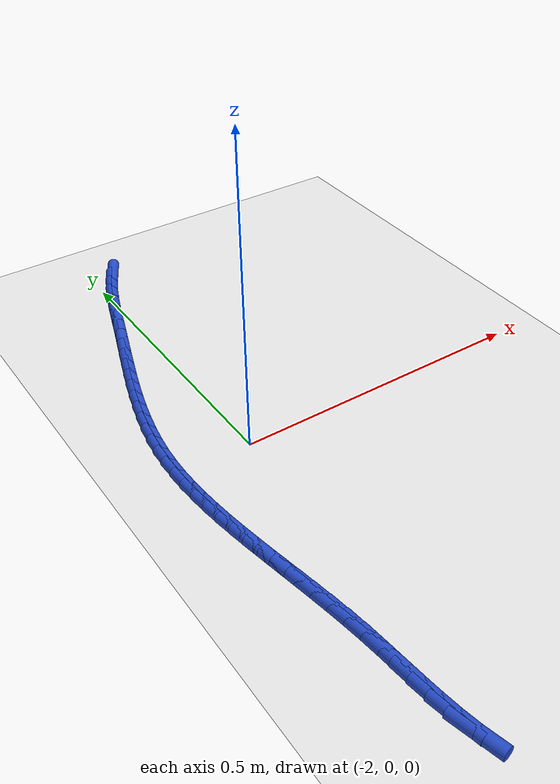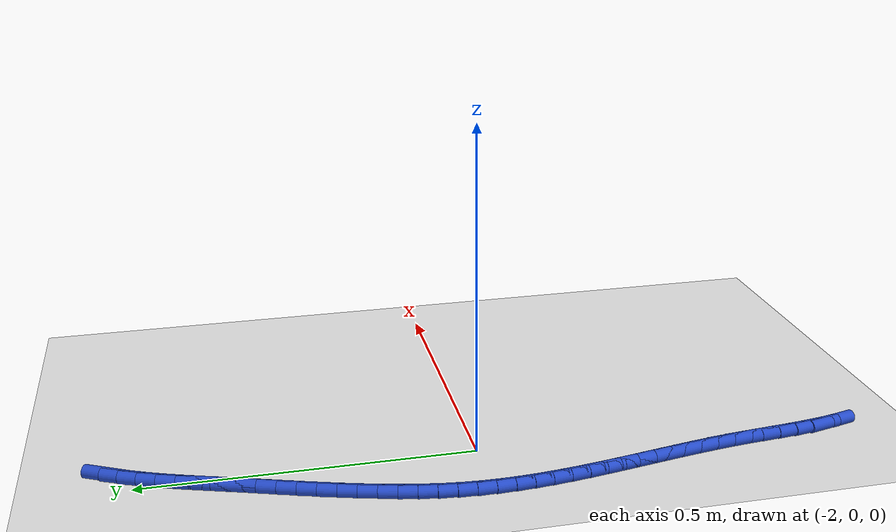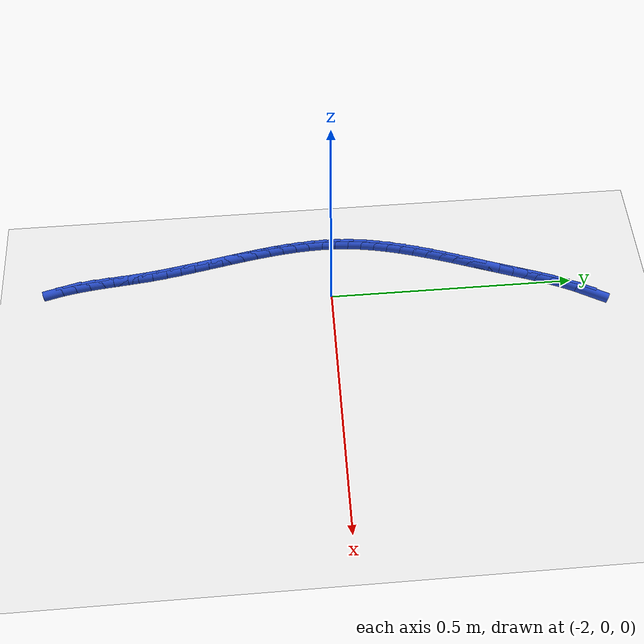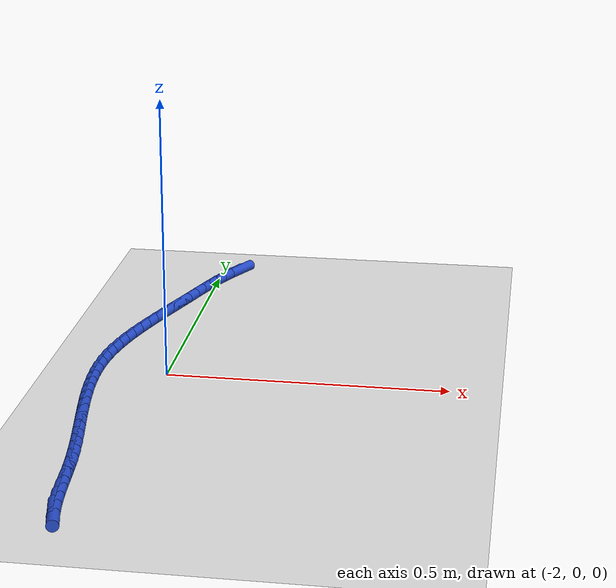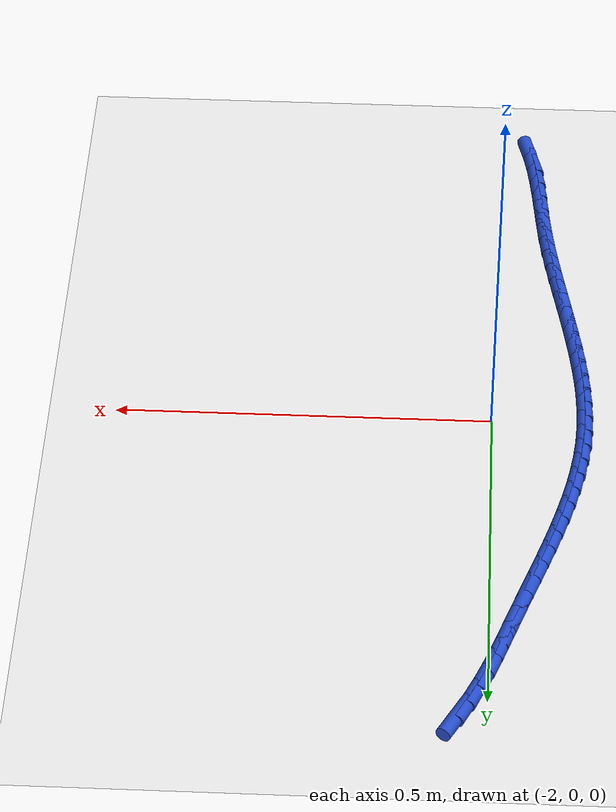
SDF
<sdf version="1.6">
 <world name="default">
  <model name="ground_plane">
   <static>1</static>
   <link name="link">
    <collision name="collision">
     <geometry><plane><normal>0 0 1</normal><size>100 100</size></plane></geometry>
     <surface><friction><ode><mu>100</mu><mu2>50</mu2></ode></friction></surface>
    </collision>
    <visual name="visual">
     <cast_shadows>0</cast_shadows>
     <geometry><plane><normal>0 0 1</normal><size>100 100</size></plane></geometry>
     <material>
      <script><uri>file://media/materials/scripts/gazebo.material</uri><name>Gazebo/WhiteGlow</name></script>
     </material>
    </visual>
   </link>
  </model>
  <model name="line">
   <link name="link_98">
    <pose>-1.9653578646720447 0.5298856837516012 0.01 0 1.57 1.0808675372747998</pose>
    <collision name="collision">
     <geometry><cylinder><radius>0.01</radius><length>0.08</length></cylinder></geometry>
    </collision>
    <visual name="visual">
     <material>
      <script><name>Gazebo/Blue</name><uri>file://media/materials/scripts/gazebo.material</uri></script>
     </material>
     <geometry><cylinder><radius>0.01</radius><length>0.08</length></cylinder></geometry>
    </visual>
   </link>
   <link name="link_99">
    <pose>-1.978480280240649 0.5052794634999281 0.01 0 1.57 1.1376673952364231</pose>
    <collision name="collision">
     <geometry><cylinder><radius>0.01</radius><length>0.08</length></cylinder></geometry>
    </collision>
    <visual name="visual">
     <material>
      <script><name>Gazebo/Blue</name><uri>file://media/materials/scripts/gazebo.material</uri></script>
     </material>
     <geometry><cylinder><radius>0.01</radius><length>0.08</length></cylinder></geometry>
    </visual>
   </link>
   <link name="link_100">
    <pose>-1.9902915178894625 0.47973687675763205 0.01 0 1.57 1.181896480658805</pose>
    <collision name="collision">
     <geometry><cylinder><radius>0.01</radius><length>0.08</length></cylinder></geometry>
    </collision>
    <visual name="visual">
     <material>
      <script><name>Gazebo/Blue</name><uri>file://media/materials/scripts/gazebo.material</uri></script>
     </material>
     <geometry><cylinder><radius>0.01</radius><length>0.08</length></cylinder></geometry>
    </visual>
   </link>
   <link name="link_101">
    <pose>-2.00106702989893 0.4534403533787277 0.01 0 1.57 1.2139938215167898</pose>
    <collision name="collision">
     <geometry><cylinder><radius>0.01</radius><length>0.08</length></cylinder></geometry>
    </collision>
    <visual name="visual">
     <material>
      <script><name>Gazebo/Blue</name><uri>file://media/materials/scripts/gazebo.material</uri></script>
     </material>
     <geometry><cylinder><radius>0.01</radius><length>0.08</length></cylinder></geometry>
    </visual>
   </link>
   <link name="link_102">
    <pose>-2.0110822685494973 0.4265723232172289 0.01 0 1.57 1.2344343236175428</pose>
    <collision name="collision">
     <geometry><cylinder><radius>0.01</radius><length>0.08</length></cylinder></geometry>
    </collision>
    <visual name="visual">
     <material>
      <script><name>Gazebo/Blue</name><uri>file://media/materials/scripts/gazebo.material</uri></script>
     </material>
     <geometry><cylinder><radius>0.01</radius><length>0.08</length></cylinder></geometry>
    </visual>
   </link>
   <link name="link_103">
    <pose>-2.02061268612161 0.3993152161271495 0.01 0 1.57 1.2436006231576993</pose>
    <collision name="collision">
     <geometry><cylinder><radius>0.01</radius><length>0.08</length></cylinder></geometry>
    </collision>
    <visual name="visual">
     <material>
      <script><name>Gazebo/Blue</name><uri>file://media/materials/scripts/gazebo.material</uri></script>
     </material>
     <geometry><cylinder><radius>0.01</radius><length>0.08</length></cylinder></geometry>
    </visual>
   </link>
   <link name="link_104">
    <pose>-2.0299337348957125 0.37185146196250357 0.01 0 1.57 1.24205098177422</pose>
    <collision name="collision">
     <geometry><cylinder><radius>0.01</radius><length>0.08</length></cylinder></geometry>
    </collision>
    <visual name="visual">
     <material>
      <script><name>Gazebo/Blue</name><uri>file://media/materials/scripts/gazebo.material</uri></script>
     </material>
     <geometry><cylinder><radius>0.01</radius><length>0.08</length></cylinder></geometry>
    </visual>
   </link>
   <link name="link_105">
    <pose>-2.0393119352096507 0.34435937423943924 0.01 0 1.57 1.2373908040969177</pose>
    <collision name="collision">
     <geometry><cylinder><radius>0.01</radius><length>0.08</length></cylinder></geometry>
    </collision>
    <visual name="visual">
     <material>
      <script><name>Gazebo/Blue</name><uri>file://media/materials/scripts/gazebo.material</uri></script>
     </material>
     <geometry><cylinder><radius>0.01</radius><length>0.08</length></cylinder></geometry>
    </visual>
   </link>
   <link name="link_106">
    <pose>-2.048813429883319 0.31692492132572825 0.01 0 1.57 1.2370639648035853</pose>
    <collision name="collision">
     <geometry><cylinder><radius>0.01</radius><length>0.08</length></cylinder></geometry>
    </collision>
    <visual name="visual">
     <material>
      <script><name>Gazebo/Blue</name><uri>file://media/materials/scripts/gazebo.material</uri></script>
     </material>
     <geometry><cylinder><radius>0.01</radius><length>0.08</length></cylinder></geometry>
    </visual>
   </link>
   <link name="link_107">
    <pose>-2.0583067541239433 0.28954300296777813 0.01 0 1.57 1.2414103522212392</pose>
    <collision name="collision">
     <geometry><cylinder><radius>0.01</radius><length>0.08</length></cylinder></geometry>
    </collision>
    <visual name="visual">
     <material>
      <script><name>Gazebo/Blue</name><uri>file://media/materials/scripts/gazebo.material</uri></script>
     </material>
     <geometry><cylinder><radius>0.01</radius><length>0.08</length></cylinder></geometry>
    </visual>
   </link>
   <link name="link_108">
    <pose>-2.067652065210853 0.2622046578950393 0.01 0 1.57 1.2504898668510733</pose>
    <collision name="collision">
     <geometry><cylinder><radius>0.01</radius><length>0.08</length></cylinder></geometry>
    </collision>
    <visual name="visual">
     <material>
      <script><name>Gazebo/Blue</name><uri>file://media/materials/scripts/gazebo.material</uri></script>
     </material>
     <geometry><cylinder><radius>0.01</radius><length>0.08</length></cylinder></geometry>
    </visual>
   </link>
   <link name="link_109">
    <pose>-2.0767095204233788 0.2349009248369634 0.01 0 1.57 1.2643966668312978</pose>
    <collision name="collision">
     <geometry><cylinder><radius>0.01</radius><length>0.08</length></cylinder></geometry>
    </collision>
    <visual name="visual">
     <material>
      <script><name>Gazebo/Blue</name><uri>file://media/materials/scripts/gazebo.material</uri></script>
     </material>
     <geometry><cylinder><radius>0.01</radius><length>0.08</length></cylinder></geometry>
    </visual>
   </link>
   <link name="link_110">
    <pose>-2.0853392770408514 0.20762284252300103 0.01 0 1.57 1.2832546850051716</pose>
    <collision name="collision">
     <geometry><cylinder><radius>0.01</radius><length>0.08</length></cylinder></geometry>
    </collision>
    <visual name="visual">
     <material>
      <script><name>Gazebo/Blue</name><uri>file://media/materials/scripts/gazebo.material</uri></script>
     </material>
     <geometry><cylinder><radius>0.01</radius><length>0.08</length></cylinder></geometry>
    </visual>
   </link>
   <link name="link_111">
    <pose>-2.0934014923426014 0.1803614496826032 0.01 0 1.57 1.3072096035891527</pose>
    <collision name="collision">
     <geometry><cylinder><radius>0.01</radius><length>0.08</length></cylinder></geometry>
    </collision>
    <visual name="visual">
     <material>
      <script><name>Gazebo/Blue</name><uri>file://media/materials/scripts/gazebo.material</uri></script>
     </material>
     <geometry><cylinder><radius>0.01</radius><length>0.08</length></cylinder></geometry>
    </visual>
   </link>
   <link name="link_112">
    <pose>-2.100756323607959 0.15310778504522043 0.01 0 1.57 1.3364163267675644</pose>
    <collision name="collision">
     <geometry><cylinder><radius>0.01</radius><length>0.08</length></cylinder></geometry>
    </collision>
    <visual name="visual">
     <material>
      <script><name>Gazebo/Blue</name><uri>file://media/materials/scripts/gazebo.material</uri></script>
     </material>
     <geometry><cylinder><radius>0.01</radius><length>0.08</length></cylinder></geometry>
    </visual>
   </link>
   <link name="link_113">
    <pose>-2.107263928116254 0.1258528873403043 0.01 0 1.57 1.3710208444673029</pose>
    <collision name="collision">
     <geometry><cylinder><radius>0.01</radius><length>0.08</length></cylinder></geometry>
    </collision>
    <visual name="visual">
     <material>
      <script><name>Gazebo/Blue</name><uri>file://media/materials/scripts/gazebo.material</uri></script>
     </material>
     <geometry><cylinder><radius>0.01</radius><length>0.08</length></cylinder></geometry>
    </visual>
   </link>
   <link name="link_114">
    <pose>-2.112784463146818 0.09858779529730542 0.01 0 1.57 1.4111354916694816</pose>
    <collision name="collision">
     <geometry><cylinder><radius>0.01</radius><length>0.08</length></cylinder></geometry>
    </collision>
    <visual name="visual">
     <material>
      <script><name>Gazebo/Blue</name><uri>file://media/materials/scripts/gazebo.material</uri></script>
     </material>
     <geometry><cylinder><radius>0.01</radius><length>0.08</length></cylinder></geometry>
    </visual>
   </link>
   <link name="link_115">
    <pose>-2.1171780859789804 0.07130354764567434 0.01 0 1.57 1.4568071791085657</pose>
    <collision name="collision">
     <geometry><cylinder><radius>0.01</radius><length>0.08</length></cylinder></geometry>
    </collision>
    <visual name="visual">
     <material>
      <script><name>Gazebo/Blue</name><uri>file://media/materials/scripts/gazebo.material</uri></script>
     </material>
     <geometry><cylinder><radius>0.01</radius><length>0.08</length></cylinder></geometry>
    </visual>
   </link>
   <link name="link_116">
    <pose>-2.120304953892072 0.043991183114862706 0.01 0 1.57 1.5070990619454692</pose>
    <collision name="collision">
     <geometry><cylinder><radius>0.01</radius><length>0.08</length></cylinder></geometry>
    </collision>
    <visual name="visual">
     <material>
      <script><name>Gazebo/Blue</name><uri>file://media/materials/scripts/gazebo.material</uri></script>
     </material>
     <geometry><cylinder><radius>0.01</radius><length>0.08</length></cylinder></geometry>
    </visual>
   </link>
   <link name="link_117">
    <pose>-2.1220494151158853 0.016641479829280464 0.01 0 1.57 1.555344500678862</pose>
    <collision name="collision">
     <geometry><cylinder><radius>0.01</radius><length>0.08</length></cylinder></geometry>
    </collision>
    <visual name="visual">
     <material>
      <script><name>Gazebo/Blue</name><uri>file://media/materials/scripts/gazebo.material</uri></script>
     </material>
     <geometry><cylinder><radius>0.01</radius><length>0.08</length></cylinder></geometry>
    </visual>
   </link>
   <link name="link_118">
    <pose>-2.122472800578893 -0.01075669069150801 0.01 0 1.57 -1.5432077804879152</pose>
    <collision name="collision">
     <geometry><cylinder><radius>0.01</radius><length>0.08</length></cylinder></geometry>
    </collision>
    <visual name="visual">
     <material>
      <script><name>Gazebo/Blue</name><uri>file://media/materials/scripts/gazebo.material</uri></script>
     </material>
     <geometry><cylinder><radius>0.01</radius><length>0.08</length></cylinder></geometry>
    </visual>
   </link>
   <link name="link_119">
    <pose>-2.1217150651017502 -0.038215303929905325 0.01 0 1.57 -1.5055610956622407</pose>
    <collision name="collision">
     <geometry><cylinder><radius>0.01</radius><length>0.08</length></cylinder></geometry>
    </collision>
    <visual name="visual">
     <material>
      <script><name>Gazebo/Blue</name><uri>file://media/materials/scripts/gazebo.material</uri></script>
     </material>
     <geometry><cylinder><radius>0.01</radius><length>0.08</length></cylinder></geometry>
    </visual>
   </link>
   <link name="link_120">
    <pose>-2.119916519610218 -0.0657463392045734 0.01 0 1.57 -1.473368958638558</pose>
    <collision name="collision">
     <geometry><cylinder><radius>0.01</radius><length>0.08</length></cylinder></geometry>
    </collision>
    <visual name="visual">
     <material>
      <script><name>Gazebo/Blue</name><uri>file://media/materials/scripts/gazebo.material</uri></script>
     </material>
     <geometry><cylinder><radius>0.01</radius><length>0.08</length></cylinder></geometry>
    </visual>
   </link>
   <link name="link_121">
    <pose>-2.1172174750300603 -0.09336177583417536 0.01 0 1.57 -1.4466099075221466</pose>
    <collision name="collision">
     <geometry><cylinder><radius>0.01</radius><length>0.08</length></cylinder></geometry>
    </collision>
    <visual name="visual">
     <material>
      <script><name>Gazebo/Blue</name><uri>file://media/materials/scripts/gazebo.material</uri></script>
     </material>
     <geometry><cylinder><radius>0.01</radius><length>0.08</length></cylinder></geometry>
    </visual>
   </link>
   <link name="link_122">
    <pose>-2.113758242287039 -0.12107359313737379 0.01 0 1.57 -1.4252095632021804</pose>
    <collision name="collision">
     <geometry><cylinder><radius>0.01</radius><length>0.08</length></cylinder></geometry>
    </collision>
    <visual name="visual">
     <material>
      <script><name>Gazebo/Blue</name><uri>file://media/materials/scripts/gazebo.material</uri></script>
     </material>
     <geometry><cylinder><radius>0.01</radius><length>0.08</length></cylinder></geometry>
    </visual>
   </link>
   <link name="link_123">
    <pose>-2.109679132306916 -0.14889377043283142 0.01 0 1.57 -1.4090648996602484</pose>
    <collision name="collision">
     <geometry><cylinder><radius>0.01</radius><length>0.08</length></cylinder></geometry>
    </collision>
    <visual name="visual">
     <material>
      <script><name>Gazebo/Blue</name><uri>file://media/materials/scripts/gazebo.material</uri></script>
     </material>
     <geometry><cylinder><radius>0.01</radius><length>0.08</length></cylinder></geometry>
    </visual>
   </link>
   <link name="link_124">
    <pose>-2.1051204560154537 -0.1768342870392109 0.01 0 1.57 -1.3980627412841953</pose>
    <collision name="collision">
     <geometry><cylinder><radius>0.01</radius><length>0.08</length></cylinder></geometry>
    </collision>
    <visual name="visual">
     <material>
      <script><name>Gazebo/Blue</name><uri>file://media/materials/scripts/gazebo.material</uri></script>
     </material>
     <geometry><cylinder><radius>0.01</radius><length>0.08</length></cylinder></geometry>
    </visual>
   </link>
   <link name="link_125">
    <pose>-2.100222524338414 -0.20490712227517563 0.01 0 1.57 -1.3920926995800935</pose>
    <collision name="collision">
     <geometry><cylinder><radius>0.01</radius><length>0.08</length></cylinder></geometry>
    </collision>
    <visual name="visual">
     <material>
      <script><name>Gazebo/Blue</name><uri>file://media/materials/scripts/gazebo.material</uri></script>
     </material>
     <geometry><cylinder><radius>0.01</radius><length>0.08</length></cylinder></geometry>
    </visual>
   </link>
   <link name="link_126">
    <pose>-2.0951256482015603 -0.23312425545938686 0.01 0 1.57 -1.3910551484674365</pose>
    <collision name="collision">
     <geometry><cylinder><radius>0.01</radius><length>0.08</length></cylinder></geometry>
    </collision>
    <visual name="visual">
     <material>
      <script><name>Gazebo/Blue</name><uri>file://media/materials/scripts/gazebo.material</uri></script>
     </material>
     <geometry><cylinder><radius>0.01</radius><length>0.08</length></cylinder></geometry>
    </visual>
   </link>
   <link name="link_127">
    <pose>-2.089970138530654 -0.26149766591050794 0.01 0 1.57 -1.3948649156908084</pose>
    <collision name="collision">
     <geometry><cylinder><radius>0.01</radius><length>0.08</length></cylinder></geometry>
    </collision>
    <visual name="visual">
     <material>
      <script><name>Gazebo/Blue</name><uri>file://media/materials/scripts/gazebo.material</uri></script>
     </material>
     <geometry><cylinder><radius>0.01</radius><length>0.08</length></cylinder></geometry>
    </visual>
   </link>
   <link name="link_128">
    <pose>-2.084896306251458 -0.2900393329472016 0.01 0 1.57 -1.4034512782326336</pose>
    <collision name="collision">
     <geometry><cylinder><radius>0.01</radius><length>0.08</length></cylinder></geometry>
    </collision>
    <visual name="visual">
     <material>
      <script><name>Gazebo/Blue</name><uri>file://media/materials/scripts/gazebo.material</uri></script>
     </material>
     <geometry><cylinder><radius>0.01</radius><length>0.08</length></cylinder></geometry>
    </visual>
   </link>
   <link name="link_129">
    <pose>-2.080044462289734 -0.31876123588813043 0.01 0 1.57 -1.4167546972748648</pose>
    <collision name="collision">
     <geometry><cylinder><radius>0.01</radius><length>0.08</length></cylinder></geometry>
    </collision>
    <visual name="visual">
     <material>
      <script><name>Gazebo/Blue</name><uri>file://media/materials/scripts/gazebo.material</uri></script>
     </material>
     <geometry><cylinder><radius>0.01</radius><length>0.08</length></cylinder></geometry>
    </visual>
   </link>
   <link name="link_130">
    <pose>-2.075554917571245 -0.34767535405195715 0.01 0 1.57 -1.4347205866993151</pose>
    <collision name="collision">
     <geometry><cylinder><radius>0.01</radius><length>0.08</length></cylinder></geometry>
    </collision>
    <visual name="visual">
     <material>
      <script><name>Gazebo/Blue</name><uri>file://media/materials/scripts/gazebo.material</uri></script>
     </material>
     <geometry><cylinder><radius>0.01</radius><length>0.08</length></cylinder></geometry>
    </visual>
   </link>
   <link name="link_131">
    <pose>-2.071567983021753 -0.3767936667573446 0.01 0 1.57 -1.456609969610109</pose>
    <collision name="collision">
     <geometry><cylinder><radius>0.01</radius><length>0.08</length></cylinder></geometry>
    </collision>
    <visual name="visual">
     <material>
      <script><name>Gazebo/Blue</name><uri>file://media/materials/scripts/gazebo.material</uri></script>
     </material>
     <geometry><cylinder><radius>0.01</radius><length>0.08</length></cylinder></geometry>
    </visual>
   </link>
   <link name="link_132">
    <pose>-2.068204627328931 -0.4061205086134704 0.01 0 1.57 -1.47230826007541</pose>
    <collision name="collision">
     <geometry><cylinder><radius>0.01</radius><length>0.08</length></cylinder></geometry>
    </collision>
    <visual name="visual">
     <material>
      <script><name>Gazebo/Blue</name><uri>file://media/materials/scripts/gazebo.material</uri></script>
     </material>
     <geometry><cylinder><radius>0.01</radius><length>0.08</length></cylinder></geometry>
    </visual>
   </link>
   <link name="link_133">
    <pose>-2.0652971487333285 -0.4355461218636105 0.01 0 1.57 -1.4742195449811692</pose>
    <collision name="collision">
     <geometry><cylinder><radius>0.01</radius><length>0.08</length></cylinder></geometry>
    </collision>
    <visual name="visual">
     <material>
      <script><name>Gazebo/Blue</name><uri>file://media/materials/scripts/gazebo.material</uri></script>
     </material>
     <geometry><cylinder><radius>0.01</radius><length>0.08</length></cylinder></geometry>
    </visual>
   </link>
   <link name="link_134">
    <pose>-2.0624560076967824 -0.4648730709257885 0.01 0 1.57 -1.4620237615306058</pose>
    <collision name="collision">
     <geometry><cylinder><radius>0.01</radius><length>0.08</length></cylinder></geometry>
    </collision>
    <visual name="visual">
     <material>
      <script><name>Gazebo/Blue</name><uri>file://media/materials/scripts/gazebo.material</uri></script>
     </material>
     <geometry><cylinder><radius>0.01</radius><length>0.08</length></cylinder></geometry>
    </visual>
   </link>
   <link name="link_135">
    <pose>-2.059285980224145 -0.49390167352754455 0.01 0 1.57 -1.4351445623625705</pose>
    <collision name="collision">
     <geometry><cylinder><radius>0.01</radius><length>0.08</length></cylinder></geometry>
    </collision>
    <visual name="visual">
     <material>
      <script><name>Gazebo/Blue</name><uri>file://media/materials/scripts/gazebo.material</uri></script>
     </material>
     <geometry><cylinder><radius>0.01</radius><length>0.08</length></cylinder></geometry>
    </visual>
   </link>
   <link name="link_136">
    <pose>-2.055391842320269 -0.5224322473964186 0.01 0 1.57 -1.3925796029652069</pose>
    <collision name="collision">
     <geometry><cylinder><radius>0.01</radius><length>0.08</length></cylinder></geometry>
    </collision>
    <visual name="visual">
     <material>
      <script><name>Gazebo/Blue</name><uri>file://media/materials/scripts/gazebo.material</uri></script>
     </material>
     <geometry><cylinder><radius>0.01</radius><length>0.08</length></cylinder></geometry>
    </visual>
   </link>
   <link name="link_137">
    <pose>-2.0503783699900064 -0.5502651102599507 0.01 0 1.57 -1.3330228180014247</pose>
    <collision name="collision">
     <geometry><cylinder><radius>0.01</radius><length>0.08</length></cylinder></geometry>
    </collision>
    <visual name="visual">
     <material>
      <script><name>Gazebo/Blue</name><uri>file://media/materials/scripts/gazebo.material</uri></script>
     </material>
     <geometry><cylinder><radius>0.01</radius><length>0.08</length></cylinder></geometry>
    </visual>
   </link>
  </model>
 </world>
</sdf>
